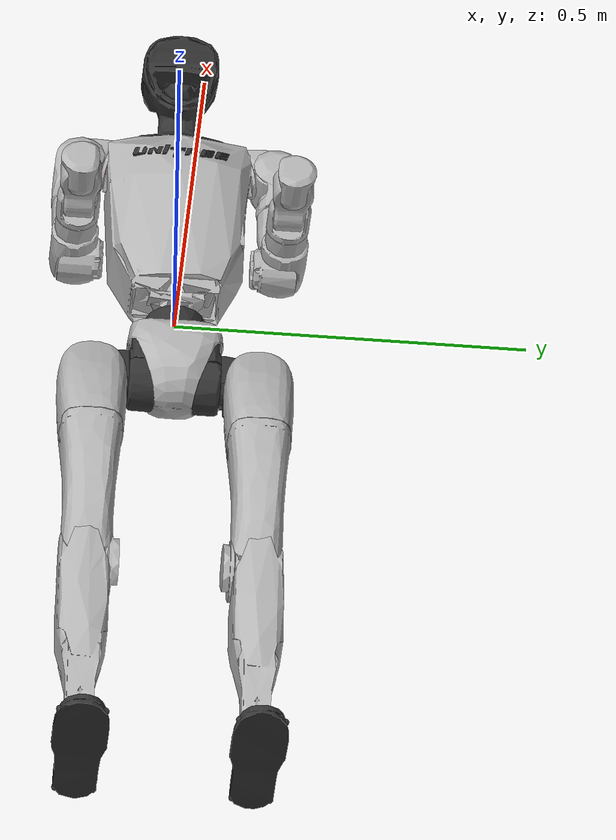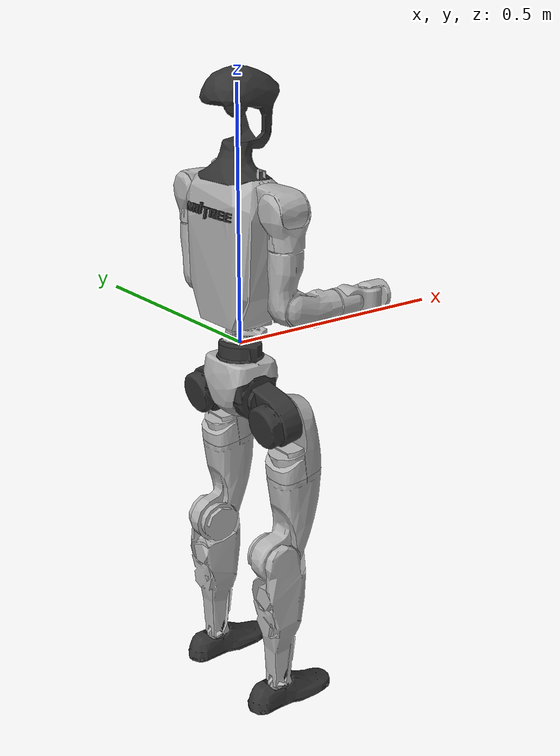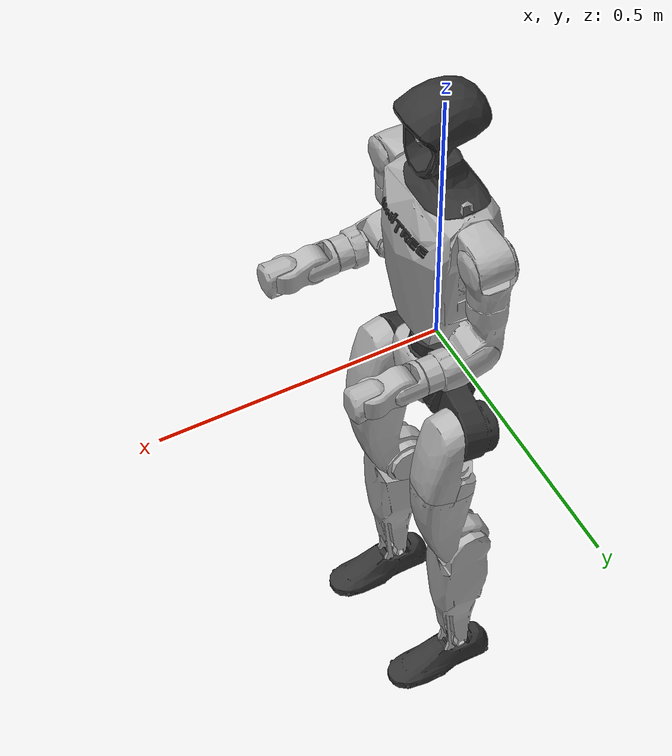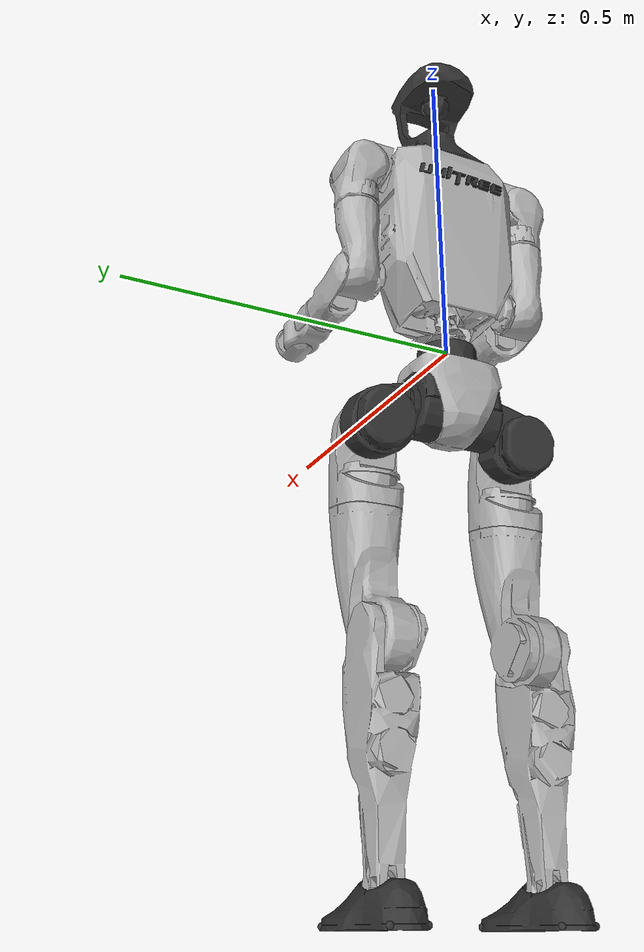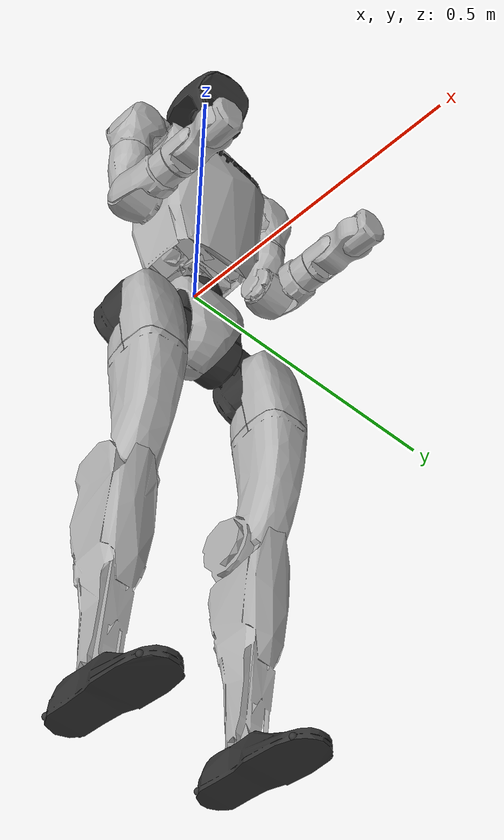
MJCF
<mujoco model="g1_29dof_with_hand_rev_1_0">
  <compiler angle="radian" />

  <default>
    <default class="torso_motor">
      <joint damping="0.05" armature="0.01" frictionloss="0.2" />
    </default>
    <default class="leg_motor">
      <joint damping="0.05" armature="0.01" frictionloss="0.2" />
    </default>
    <default class="ankle_motor">
      <joint damping="0.05" armature="0.01" frictionloss="0.2" />
    </default>
    <default class="arm_motor">
      <joint damping="0.05" armature="0.01" frictionloss="0.2" />
    </default>
    <default class="wrist_motor">
      <joint damping="0.05" armature="0.01" frictionloss="0.1" />
    </default>

  </default>

  <asset>
    <mesh name="pelvis" file="meshes/pelvis.STL" />
    <mesh name="pelvis_contour_link" file="meshes/pelvis_contour_link.STL" />
    <mesh name="left_hip_pitch_link" file="meshes/left_hip_pitch_link.STL" />
    <mesh name="left_hip_roll_link" file="meshes/left_hip_roll_link.STL" />
    <mesh name="left_hip_yaw_link" file="meshes/left_hip_yaw_link.STL" />
    <mesh name="left_knee_link" file="meshes/left_knee_link.STL" />
    <mesh name="left_ankle_pitch_link" file="meshes/left_ankle_pitch_link.STL" />
    <mesh name="left_ankle_roll_link" file="meshes/left_ankle_roll_link.STL" />
    <mesh name="right_hip_pitch_link" file="meshes/right_hip_pitch_link.STL" />
    <mesh name="right_hip_roll_link" file="meshes/right_hip_roll_link.STL" />
    <mesh name="right_hip_yaw_link" file="meshes/right_hip_yaw_link.STL" />
    <mesh name="right_knee_link" file="meshes/right_knee_link.STL" />
    <mesh name="right_ankle_pitch_link" file="meshes/right_ankle_pitch_link.STL" />
    <mesh name="right_ankle_roll_link" file="meshes/right_ankle_roll_link.STL" />
    <mesh name="waist_yaw_link" file="meshes/waist_yaw_link_rev_1_0.STL" />
    <mesh name="waist_roll_link" file="meshes/waist_roll_link_rev_1_0.STL" />
    <mesh name="torso_link" file="meshes/torso_link_rev_1_0.STL" />
    <mesh name="logo_link" file="meshes/logo_link.STL" />
    <mesh name="head_link" file="meshes/head_link.STL" />
    <mesh name="left_shoulder_pitch_link" file="meshes/left_shoulder_pitch_link.STL" />
    <mesh name="left_shoulder_roll_link" file="meshes/left_shoulder_roll_link.STL" />
    <mesh name="left_shoulder_yaw_link" file="meshes/left_shoulder_yaw_link.STL" />
    <mesh name="left_elbow_link" file="meshes/left_elbow_link.STL" />
    <mesh name="left_wrist_roll_link" file="meshes/left_wrist_roll_link.STL" />
    <mesh name="left_wrist_pitch_link" file="meshes/left_wrist_pitch_link.STL" />
    <mesh name="left_wrist_yaw_link" file="meshes/left_wrist_yaw_link.STL" />
    <mesh name="right_shoulder_pitch_link" file="meshes/right_shoulder_pitch_link.STL" />
    <mesh name="right_shoulder_roll_link" file="meshes/right_shoulder_roll_link.STL" />
    <mesh name="right_shoulder_yaw_link" file="meshes/right_shoulder_yaw_link.STL" />
    <mesh name="right_elbow_link" file="meshes/right_elbow_link.STL" />
    <mesh name="right_wrist_roll_link" file="meshes/right_wrist_roll_link.STL" />
    <mesh name="right_wrist_pitch_link" file="meshes/right_wrist_pitch_link.STL" />
    <mesh name="right_wrist_yaw_link" file="meshes/right_wrist_yaw_link.STL" />
  </asset>

  <worldbody>
    <body name="base" pos="0 0 0">
      <freejoint name="base" />
      <body name="pelvis" pos="0 0 0">
        <inertial pos="0 0 -0.07605" quat="1 0 -0.000399148 0" mass="3.813"
          diaginertia="0.010549 0.0093089 0.0079184" />
        <geom type="mesh" contype="0" conaffinity="0" group="1" density="0" rgba="0.2 0.2 0.2 1"
          mesh="pelvis" />
        <geom type="mesh" contype="0" conaffinity="0" group="1" density="0" rgba="0.7 0.7 0.7 1"
          mesh="pelvis_contour_link" />
        <geom type="mesh" rgba="0.7 0.7 0.7 1" mesh="pelvis_contour_link" />
        <site name="imu_in_pelvis" size="0.01" pos="0.04525 0 -0.08339" />
        <body name="left_hip_pitch_link" pos="0 0.064452 -0.1027">
          <inertial pos="0.002741 0.047791 -0.02606" quat="0.954862 0.293964 0.0302556 0.030122"
            mass="1.35" diaginertia="0.00181517 0.00153422 0.00116212" />
          <joint name="left_hip_pitch_joint" pos="0 0 0" axis="0 1 0" range="-2.5307 2.8798"
            actuatorfrcrange="-88 88" class="leg_motor" />
          <geom type="mesh" contype="0" conaffinity="0" group="1" density="0" rgba="0.2 0.2 0.2 1"
            mesh="left_hip_pitch_link" />
          <geom type="mesh" rgba="0.2 0.2 0.2 1" mesh="left_hip_pitch_link" />
          <body name="left_hip_roll_link" pos="0 0.052 -0.030465" quat="0.996179 0 -0.0873386 0">
            <inertial pos="0.029812 -0.001045 -0.087934"
              quat="0.977808 -1.97119e-05 0.205576 -0.0403793" mass="1.52"
              diaginertia="0.00254986 0.00241169 0.00148755" />
            <joint name="left_hip_roll_joint" pos="0 0 0" axis="1 0 0" range="-0.5236 2.9671"
              actuatorfrcrange="-139 139" class="leg_motor" />
            <geom type="mesh" contype="0" conaffinity="0" group="1" density="0" rgba="0.7 0.7 0.7 1"
              mesh="left_hip_roll_link" />
            <geom type="mesh" rgba="0.7 0.7 0.7 1" mesh="left_hip_roll_link" />
            <body name="left_hip_yaw_link" pos="0.025001 0 -0.12412">
              <inertial pos="-0.057709 -0.010981 -0.15078" quat="0.600598 0.15832 0.223482 0.751181"
                mass="1.702" diaginertia="0.00776166 0.00717575 0.00160139" />
              <joint name="left_hip_yaw_joint" pos="0 0 0" axis="0 0 1" range="-2.7576 2.7576"
                actuatorfrcrange="-88 88" class="leg_motor" />
              <geom type="mesh" contype="0" conaffinity="0" group="1" density="0"
                rgba="0.7 0.7 0.7 1"
                mesh="left_hip_yaw_link" />
              <geom type="mesh" rgba="0.7 0.7 0.7 1" mesh="left_hip_yaw_link" />
              <body name="left_knee_link" pos="-0.078273 0.0021489 -0.17734"
                quat="0.996179 0 0.0873386 0">
                <inertial pos="0.005457 0.003964 -0.12074"
                  quat="0.923418 -0.0327699 0.0158246 0.382067" mass="1.932"
                  diaginertia="0.0113804 0.0112778 0.00146458" />
                <joint name="left_knee_joint" pos="0 0 0" axis="0 1 0" range="-0.087267 2.8798"
                  actuatorfrcrange="-139 139" class="leg_motor" />
                <geom type="mesh" contype="0" conaffinity="0" group="1" density="0"
                  rgba="0.7 0.7 0.7 1" mesh="left_knee_link" />
                <geom type="mesh" rgba="0.7 0.7 0.7 1" mesh="left_knee_link" />
                <body name="left_ankle_pitch_link" pos="0 -9.4445e-05 -0.30001">
                  <inertial pos="-0.007269 0 0.011137" quat="0.603053 0.369225 0.369225 0.603053"
                    mass="0.074" diaginertia="1.89e-05 1.40805e-05 6.9195e-06" />
                  <joint name="left_ankle_pitch_joint" pos="0 0 0" axis="0 1 0"
                    range="-0.87267 0.5236" actuatorfrcrange="-50 50" class="ankle_motor" />
                  <geom type="mesh" contype="0" conaffinity="0" group="1" density="0"
                    rgba="0.7 0.7 0.7 1" mesh="left_ankle_pitch_link" />
                  <geom type="mesh" rgba="0.7 0.7 0.7 1" mesh="left_ankle_pitch_link" />
                  <body name="left_ankle_roll_link" pos="0 0 -0.017558">
                    <inertial pos="0.026505 0 -0.016425"
                      quat="-0.000481092 0.728482 -0.000618967 0.685065" mass="0.608"
                      diaginertia="0.00167218 0.0016161 0.000217621" />
                    <joint name="left_ankle_roll_joint" pos="0 0 0" axis="1 0 0"
                      range="-0.2618 0.2618" actuatorfrcrange="-50 50" class="ankle_motor" />
                    <geom type="mesh" contype="0" conaffinity="0" group="1" density="0"
                      rgba="0.2 0.2 0.2 1" mesh="left_ankle_roll_link" />
                    <geom size="0.005" pos="-0.05 0.025 -0.03" rgba="0.2 0.2 0.2 1" />
                    <geom size="0.005" pos="-0.05 -0.025 -0.03" rgba="0.2 0.2 0.2 1" />
                    <geom size="0.005" pos="0.12 0.03 -0.03" rgba="0.2 0.2 0.2 1" />
                    <geom size="0.005" pos="0.12 -0.03 -0.03" rgba="0.2 0.2 0.2 1" />
                  </body>
                </body>
              </body>
            </body>
          </body>
        </body>
        <body name="right_hip_pitch_link" pos="0 -0.064452 -0.1027">
          <inertial pos="0.002741 -0.047791 -0.02606" quat="0.954862 -0.293964 0.0302556 -0.030122"
            mass="1.35" diaginertia="0.00181517 0.00153422 0.00116212" />
          <joint name="right_hip_pitch_joint" pos="0 0 0" axis="0 1 0" range="-2.5307 2.8798"
            actuatorfrcrange="-88 88" class="leg_motor" />
          <geom type="mesh" contype="0" conaffinity="0" group="1" density="0" rgba="0.2 0.2 0.2 1"
            mesh="right_hip_pitch_link" />
          <geom type="mesh" rgba="0.2 0.2 0.2 1" mesh="right_hip_pitch_link" />
          <body name="right_hip_roll_link" pos="0 -0.052 -0.030465" quat="0.996179 0 -0.0873386 0">
            <inertial pos="0.029812 0.001045 -0.087934"
              quat="0.977808 1.97119e-05 0.205576 0.0403793"
              mass="1.52" diaginertia="0.00254986 0.00241169 0.00148755" />
            <joint name="right_hip_roll_joint" pos="0 0 0" axis="1 0 0" range="-2.9671 0.5236"
              actuatorfrcrange="-139 139" class="leg_motor" />
            <geom type="mesh" contype="0" conaffinity="0" group="1" density="0" rgba="0.7 0.7 0.7 1"
              mesh="right_hip_roll_link" />
            <geom type="mesh" rgba="0.7 0.7 0.7 1" mesh="right_hip_roll_link" />
            <body name="right_hip_yaw_link" pos="0.025001 0 -0.12412">
              <inertial pos="-0.057709 0.010981 -0.15078" quat="0.751181 0.223482 0.15832 0.600598"
                mass="1.702" diaginertia="0.00776166 0.00717575 0.00160139" />
              <joint name="right_hip_yaw_joint" pos="0 0 0" axis="0 0 1" range="-2.7576 2.7576"
                actuatorfrcrange="-88 88" class="leg_motor" />
              <geom type="mesh" contype="0" conaffinity="0" group="1" density="0"
                rgba="0.7 0.7 0.7 1"
                mesh="right_hip_yaw_link" />
              <geom type="mesh" rgba="0.7 0.7 0.7 1" mesh="right_hip_yaw_link" />
              <body name="right_knee_link" pos="-0.078273 -0.0021489 -0.17734"
                quat="0.996179 0 0.0873386 0">
                <inertial pos="0.005457 -0.003964 -0.12074"
                  quat="0.923439 0.0345276 0.0116333 -0.382012" mass="1.932"
                  diaginertia="0.011374 0.0112843 0.00146452" />
                <joint name="right_knee_joint" pos="0 0 0" axis="0 1 0" range="-0.087267 2.8798"
                  actuatorfrcrange="-139 139" class="leg_motor" />
                <geom type="mesh" contype="0" conaffinity="0" group="1" density="0"
                  rgba="0.7 0.7 0.7 1" mesh="right_knee_link" />
                <geom type="mesh" rgba="0.7 0.7 0.7 1" mesh="right_knee_link" />
                <body name="right_ankle_pitch_link" pos="0 9.4445e-05 -0.30001">
                  <inertial pos="-0.007269 0 0.011137" quat="0.603053 0.369225 0.369225 0.603053"
                    mass="0.074" diaginertia="1.89e-05 1.40805e-05 6.9195e-06" />
                  <joint name="right_ankle_pitch_joint" pos="0 0 0" axis="0 1 0"
                    range="-0.87267 0.5236" actuatorfrcrange="-50 50" class="ankle_motor" />
                  <geom type="mesh" contype="0" conaffinity="0" group="1" density="0"
                    rgba="0.7 0.7 0.7 1" mesh="right_ankle_pitch_link" />
                  <geom type="mesh" rgba="0.7 0.7 0.7 1" mesh="right_ankle_pitch_link" />
                  <body name="right_ankle_roll_link" pos="0 0 -0.017558">
                    <inertial pos="0.026505 0 -0.016425"
                      quat="0.000481092 0.728482 0.000618967 0.685065" mass="0.608"
                      diaginertia="0.00167218 0.0016161 0.000217621" />
                    <joint name="right_ankle_roll_joint" pos="0 0 0" axis="1 0 0"
                      range="-0.2618 0.2618" actuatorfrcrange="-50 50" class="ankle_motor" />
                    <geom type="mesh" contype="0" conaffinity="0" group="1" density="0"
                      rgba="0.2 0.2 0.2 1" mesh="right_ankle_roll_link" />
                    <geom size="0.005" pos="-0.05 0.025 -0.03" rgba="0.2 0.2 0.2 1" />
                    <geom size="0.005" pos="-0.05 -0.025 -0.03" rgba="0.2 0.2 0.2 1" />
                    <geom size="0.005" pos="0.12 0.03 -0.03" rgba="0.2 0.2 0.2 1" />
                    <geom size="0.005" pos="0.12 -0.03 -0.03" rgba="0.2 0.2 0.2 1" />
                  </body>
                </body>
              </body>
            </body>
          </body>
        </body>
        <body name="waist_yaw_link">
          <inertial pos="0.003494 0.000233 0.018034" quat="0.289697 0.591001 -0.337795 0.672821"
            mass="0.214" diaginertia="0.000163531 0.000107714 0.000102205" />
          <joint name="waist_yaw_joint" pos="0 0 0" axis="0 0 1" range="-2.618 2.618"
            actuatorfrcrange="-88 88" class="torso_motor" />
          <geom type="mesh" contype="0" conaffinity="0" group="1" density="0" rgba="0.7 0.7 0.7 1"
            mesh="waist_yaw_link" />
          <body name="waist_roll_link" pos="-0.0039635 0 0.044">
            <inertial pos="0 2.3e-05 0" quat="0.5 0.5 -0.5 0.5" mass="0.086"
              diaginertia="8.245e-06 7.079e-06 6.339e-06" />
            <joint name="waist_roll_joint" pos="0 0 0" axis="1 0 0" range="-0.52 0.52"
              actuatorfrcrange="-50 50" class="torso_motor" />
            <geom type="mesh" contype="0" conaffinity="0" group="1" density="0" rgba="0.7 0.7 0.7 1"
              mesh="waist_roll_link" />
            <body name="torso_link">
              <inertial pos="0.00203158 0.000339683 0.184568"
                quat="0.999803 -6.03319e-05 0.0198256 0.00131986" mass="7.818"
                diaginertia="0.121847 0.109825 0.0273735" />
              <joint name="waist_pitch_joint" pos="0 0 0" axis="0 1 0" range="-0.52 0.52"
                actuatorfrcrange="-50 50" class="torso_motor" />
              <geom type="mesh" contype="0" conaffinity="0" group="1" density="0"
                rgba="0.7 0.7 0.7 1"
                mesh="torso_link" />
              <geom type="mesh" rgba="0.7 0.7 0.7 1" mesh="torso_link" />
              <geom pos="0.0039635 0 -0.044" quat="1 0 0 0" type="mesh" contype="0" conaffinity="0"
                group="1" density="0" rgba="0.2 0.2 0.2 1" mesh="logo_link" />
              <geom pos="0.0039635 0 -0.044" quat="1 0 0 0" type="mesh" rgba="0.2 0.2 0.2 1"
                mesh="logo_link" />
              <geom pos="0.0039635 0 -0.044" type="mesh" contype="0" conaffinity="0" group="1"
                density="0" rgba="0.2 0.2 0.2 1" mesh="head_link" />
              <geom pos="0.0039635 0 -0.044" type="mesh" rgba="0.2 0.2 0.2 1" mesh="head_link" />
              <site name="imu_in_torso" size="0.01" pos="-0.03959 -0.00224 0.14792" />
              <body name="left_shoulder_pitch_link" pos="0.0039563 0.10022 0.24778"
                quat="0.990264 0.139201 1.38722e-05 -9.86868e-05">
                <site name="left_center" pos="0 0 0" size="0.01" rgba="1 0.3 0.3 1" group="2" />
                <inertial pos="0 0.035892 -0.011628" quat="0.654152 0.0130458 -0.326267 0.68225"
                  mass="0.718" diaginertia="0.000465864 0.000432842 0.000406394" />
                <joint name="left_shoulder_pitch_joint" pos="0 0 0" axis="0 1 0"
                  range="-3.0892 2.6704" actuatorfrcrange="-25 25" class="arm_motor" />
                <geom type="mesh" contype="0" conaffinity="0" group="1" density="0"
                  rgba="0.7 0.7 0.7 1" mesh="left_shoulder_pitch_link" />
                <geom size="0.03 0.025" pos="0 0.04 -0.01" quat="0.707107 0 0.707107 0"
                  type="cylinder" rgba="0.7 0.7 0.7 1" />
                <body name="left_shoulder_roll_link" pos="0 0.038 -0.013831"
                  quat="0.990268 -0.139172 0 0">
                  <inertial pos="-0.000227 0.00727 -0.063243"
                    quat="0.701256 -0.0196223 -0.00710317 0.712604" mass="0.643"
                    diaginertia="0.000691311 0.000618011 0.000388977" />
                  <joint name="left_shoulder_roll_joint" pos="0 0 0" axis="1 0 0"
                    range="-1.5882 2.2515" actuatorfrcrange="-25 25" class="arm_motor" />
                  <geom type="mesh" contype="0" conaffinity="0" group="1" density="0"
                    rgba="0.7 0.7 0.7 1" mesh="left_shoulder_roll_link" />
                  <geom size="0.03 0.015" pos="-0.004 0.006 -0.053" type="cylinder"
                    rgba="0.7 0.7 0.7 1" />
                  <body name="left_shoulder_yaw_link" pos="0 0.00624 -0.1032">
                    <inertial pos="0.010773 -0.002949 -0.072009"
                      quat="0.716879 -0.0964829 -0.0679942 0.687134" mass="0.734"
                      diaginertia="0.00106187 0.00103217 0.000400661" />
                    <joint name="left_shoulder_yaw_joint" pos="0 0 0" axis="0 0 1"
                      range="-2.618 2.618" actuatorfrcrange="-25 25" class="arm_motor" />
                    <geom type="mesh" contype="0" conaffinity="0" group="1" density="0"
                      rgba="0.7 0.7 0.7 1" mesh="left_shoulder_yaw_link" />
                    <geom type="mesh" rgba="0.7 0.7 0.7 1" mesh="left_shoulder_yaw_link" />
                    <body name="left_elbow_link" pos="0.015783 0 -0.080518">
                      <inertial pos="0.064956 0.004454 -0.010062"
                        quat="0.541765 0.636132 0.388821 0.388129" mass="0.6"
                        diaginertia="0.000443035 0.000421612 0.000259353" />
                      <joint name="left_elbow_joint" pos="0 0 0" axis="0 1 0" range="-1.0472 2.0944"
                        actuatorfrcrange="-25 25" class="arm_motor" />
                      <geom type="mesh" contype="0" conaffinity="0" group="1" density="0"
                        rgba="0.7 0.7 0.7 1" mesh="left_elbow_link" />
                      <geom type="mesh" rgba="0.7 0.7 0.7 1" mesh="left_elbow_link" />
                      <body name="left_wrist_roll_link" pos="0.1 0.00188791 -0.01">
                        <inertial pos="0.0171394 0.000537591 4.8864e-07"
                          quat="0.575338 0.411667 -0.574906 0.411094" mass="0.085445"
                          diaginertia="5.48211e-05 4.96646e-05 3.57798e-05" />
                        <joint name="left_wrist_roll_joint" pos="0 0 0" axis="1 0 0"
                          range="-1.97222 1.97222" actuatorfrcrange="-30 30" class="wrist_motor" />
                        <geom type="mesh" contype="0" conaffinity="0" group="1" density="0"
                          rgba="0.7 0.7 0.7 1" mesh="left_wrist_roll_link" />
                        <geom type="mesh" rgba="0.7 0.7 0.7 1" mesh="left_wrist_roll_link" />
                        <body name="left_wrist_pitch_link" pos="0.038 0 0">
                          <inertial pos="0.0229999 -0.00111685 -0.00111658"
                            quat="0.249998 0.661363 0.293036 0.643608" mass="0.48405"
                            diaginertia="0.000430353 0.000429873 0.000164648" />
                          <joint name="left_wrist_pitch_joint" pos="0 0 0" axis="0 1 0"
                            range="-1.61443 1.61443" actuatorfrcrange="-10 10" class="wrist_motor" />
                          <geom type="mesh" contype="0" conaffinity="0" group="1" density="0"
                            rgba="0.7 0.7 0.7 1" mesh="left_wrist_pitch_link" />
                          <geom type="mesh" rgba="0.7 0.7 0.7 1" mesh="left_wrist_pitch_link" />
                          <body name="left_wrist_yaw_link" pos="0.046 0 0">
                            <inertial pos="0.0885506 0.00212216 -0.000374562"
                              quat="0.487149 0.493844 0.513241 0.505358" mass="0.457415"
                              diaginertia="0.00105989 0.000895419 0.000323842" />
                            <joint name="left_wrist_yaw_joint" pos="0 0 0" axis="0 0 1"
                              range="-1.61443 1.61443" actuatorfrcrange="-10 10" class="wrist_motor" />
                            <geom type="mesh" contype="0" conaffinity="0" group="1" density="0"
                              rgba="0.7 0.7 0.7 1" mesh="left_wrist_yaw_link" />
                            <geom type="mesh" rgba="0.7 0.7 0.7 1" mesh="left_wrist_yaw_link" />
                            <body name="left_eef" pos="0.04 0 0" quat="0.5 -0.5 -0.5 0.5">
                            </body>
                          </body>
                        </body>
                      </body>
                    </body>
                  </body>
                </body>
              </body>
              <body name="right_shoulder_pitch_link" pos="0.0039563 -0.10021 0.24778"
                quat="0.990264 -0.139201 1.38722e-05 9.86868e-05">
                <site name="right_center" pos="0 0 0" size="0.01" rgba="1 0.3 0.3 1" group="2" />
                <inertial pos="0 -0.035892 -0.011628" quat="0.68225 -0.326267 0.0130458 0.654152"
                  mass="0.718" diaginertia="0.000465864 0.000432842 0.000406394" />
                <joint name="right_shoulder_pitch_joint" pos="0 0 0" axis="0 1 0"
                  range="-3.0892 2.6704" actuatorfrcrange="-25 25" class="arm_motor" />
                <geom type="mesh" contype="0" conaffinity="0" group="1" density="0"
                  rgba="0.7 0.7 0.7 1" mesh="right_shoulder_pitch_link" />
                <geom size="0.03 0.025" pos="0 -0.04 -0.01" quat="0.707107 0 0.707107 0"
                  type="cylinder" rgba="0.7 0.7 0.7 1" />
                <body name="right_shoulder_roll_link" pos="0 -0.038 -0.013831"
                  quat="0.990268 0.139172 0 0">
                  <inertial pos="-0.000227 -0.00727 -0.063243"
                    quat="0.712604 -0.00710317 -0.0196223 0.701256" mass="0.643"
                    diaginertia="0.000691311 0.000618011 0.000388977" />
                  <joint name="right_shoulder_roll_joint" pos="0 0 0" axis="1 0 0"
                    range="-2.2515 1.5882" actuatorfrcrange="-25 25" class="arm_motor" />
                  <geom type="mesh" contype="0" conaffinity="0" group="1" density="0"
                    rgba="0.7 0.7 0.7 1" mesh="right_shoulder_roll_link" />
                  <geom size="0.03 0.015" pos="-0.004 -0.006 -0.053" type="cylinder"
                    rgba="0.7 0.7 0.7 1" />
                  <body name="right_shoulder_yaw_link" pos="0 -0.00624 -0.1032">
                    <inertial pos="0.010773 0.002949 -0.072009"
                      quat="0.687134 -0.0679942 -0.0964829 0.716879" mass="0.734"
                      diaginertia="0.00106187 0.00103217 0.000400661" />
                    <joint name="right_shoulder_yaw_joint" pos="0 0 0" axis="0 0 1"
                      range="-2.618 2.618" actuatorfrcrange="-25 25" class="arm_motor" />
                    <geom type="mesh" contype="0" conaffinity="0" group="1" density="0"
                      rgba="0.7 0.7 0.7 1" mesh="right_shoulder_yaw_link" />
                    <geom type="mesh" rgba="0.7 0.7 0.7 1" mesh="right_shoulder_yaw_link" />
                    <body name="right_elbow_link" pos="0.015783 0 -0.080518">
                      <inertial pos="0.064956 -0.004454 -0.010062"
                        quat="0.388129 0.388821 0.636132 0.541765" mass="0.6"
                        diaginertia="0.000443035 0.000421612 0.000259353" />
                      <joint name="right_elbow_joint" pos="0 0 0" axis="0 1 0"
                        range="-1.0472 2.0944"
                        actuatorfrcrange="-25 25" class="arm_motor" />
                      <geom type="mesh" contype="0" conaffinity="0" group="1" density="0"
                        rgba="0.7 0.7 0.7 1" mesh="right_elbow_link" />
                      <geom type="mesh" rgba="0.7 0.7 0.7 1" mesh="right_elbow_link" />
                      <body name="right_wrist_roll_link" pos="0.1 -0.00188791 -0.01">
                        <inertial pos="0.0171394 -0.000537591 4.8864e-07"
                          quat="0.411667 0.575338 -0.411094 0.574906" mass="0.085445"
                          diaginertia="5.48211e-05 4.96646e-05 3.57798e-05" />
                        <joint name="right_wrist_roll_joint" pos="0 0 0" axis="1 0 0"
                          range="-1.97222 1.97222" actuatorfrcrange="-30 30" class="wrist_motor" />
                        <geom type="mesh" contype="0" conaffinity="0" group="1" density="0"
                          rgba="0.7 0.7 0.7 1" mesh="right_wrist_roll_link" />
                        <geom type="mesh" rgba="0.7 0.7 0.7 1" mesh="right_wrist_roll_link" />
                        <body name="right_wrist_pitch_link" pos="0.038 0 0">
                          <inertial pos="0.0229999 0.00111685 -0.00111658"
                            quat="0.643608 0.293036 0.661363 0.249998" mass="0.48405"
                            diaginertia="0.000430353 0.000429873 0.000164648" />
                          <joint name="right_wrist_pitch_joint" pos="0 0 0" axis="0 1 0"
                            range="-1.61443 1.61443" actuatorfrcrange="-10 10" class="wrist_motor" />
                          <geom type="mesh" contype="0" conaffinity="0" group="1" density="0"
                            rgba="0.7 0.7 0.7 1" mesh="right_wrist_pitch_link" />
                          <geom type="mesh" rgba="0.7 0.7 0.7 1" mesh="right_wrist_pitch_link" />
                          <body name="right_wrist_yaw_link" pos="0.046 0 0">
                            <inertial pos="0.0885506 -0.00212216 -0.000374562"
                              quat="0.505358 0.513241 0.493844 0.487149" mass="0.457415"
                              diaginertia="0.00105989 0.000895419 0.000323842" />
                            <joint name="right_wrist_yaw_joint" pos="0 0 0" axis="0 0 1"
                              range="-1.61443 1.61443" actuatorfrcrange="-10 10" class="wrist_motor" />
                            <geom type="mesh" contype="0" conaffinity="0" group="1" density="0"
                              rgba="0.7 0.7 0.7 1" mesh="right_wrist_yaw_link" />
                            <geom type="mesh" rgba="0.7 0.7 0.7 1" mesh="right_wrist_yaw_link" />
                            <body name="right_eef" pos="0.04 0 0" quat="0.5 0.5 -0.5 -0.5">

                            </body>
                          </body>
                        </body>
                      </body>
                    </body>
                  </body>
                </body>
              </body>
            </body>
          </body>
        </body>
      </body>
    </body>
  </worldbody>

  <actuator>
    <motor name="left_hip_pitch_joint" joint="left_hip_pitch_joint" ctrlrange="-88 88" />
    <motor name="left_hip_roll_joint" joint="left_hip_roll_joint" ctrlrange="-139 139" />
    <motor name="left_hip_yaw_joint" joint="left_hip_yaw_joint" ctrlrange="-88 88" />
    <motor name="left_knee_joint" joint="left_knee_joint" ctrlrange="-139 139" />
    <motor name="left_ankle_pitch_joint" joint="left_ankle_pitch_joint" ctrlrange="-50 50" />
    <motor name="left_ankle_roll_joint" joint="left_ankle_roll_joint" ctrlrange="-50 50" />
    <motor name="right_hip_pitch_joint" joint="right_hip_pitch_joint" ctrlrange="-88 88" />
    <motor name="right_hip_roll_joint" joint="right_hip_roll_joint" ctrlrange="-139 139" />
    <motor name="right_hip_yaw_joint" joint="right_hip_yaw_joint" ctrlrange="-88 88" />
    <motor name="right_knee_joint" joint="right_knee_joint" ctrlrange="-139 139" />
    <motor name="right_ankle_pitch_joint" joint="right_ankle_pitch_joint" ctrlrange="-50 50" />
    <motor name="right_ankle_roll_joint" joint="right_ankle_roll_joint" ctrlrange="-50 50" />
    <motor name="waist_yaw_joint" joint="waist_yaw_joint" ctrlrange="-88 88" />
    <motor name="waist_roll_joint" joint="waist_roll_joint" ctrlrange="-50 50" />
    <motor name="waist_pitch_joint" joint="waist_pitch_joint" ctrlrange="-50 50" />
    <motor name="left_shoulder_pitch_joint" joint="left_shoulder_pitch_joint" ctrlrange="-25 25" />
    <motor name="left_shoulder_roll_joint" joint="left_shoulder_roll_joint" ctrlrange="-25 25" />
    <motor name="left_shoulder_yaw_joint" joint="left_shoulder_yaw_joint" ctrlrange="-25 25" />
    <motor name="left_elbow_joint" joint="left_elbow_joint" ctrlrange="-25 25" />
    <motor name="left_wrist_roll_joint" joint="left_wrist_roll_joint" ctrlrange="-30 30" />
    <motor name="left_wrist_pitch_joint" joint="left_wrist_pitch_joint" ctrlrange="-10 10" />
    <motor name="left_wrist_yaw_joint" joint="left_wrist_yaw_joint" ctrlrange="-10 10" />
    <motor name="right_shoulder_pitch_joint" joint="right_shoulder_pitch_joint" ctrlrange="-25 25" />
    <motor name="right_shoulder_roll_joint" joint="right_shoulder_roll_joint" ctrlrange="-25 25" />
    <motor name="right_shoulder_yaw_joint" joint="right_shoulder_yaw_joint" ctrlrange="-25 25" />
    <motor name="right_elbow_joint" joint="right_elbow_joint" ctrlrange="-25 25" />
    <motor name="right_wrist_roll_joint" joint="right_wrist_roll_joint" ctrlrange="-30 30" />
    <motor name="right_wrist_pitch_joint" joint="right_wrist_pitch_joint" ctrlrange="-10 10" />
    <motor name="right_wrist_yaw_joint" joint="right_wrist_yaw_joint" ctrlrange="-10 10" />
  </actuator>

  <sensor>
    <gyro name="imu-torso-angular-velocity" site="imu_in_torso" noise="5e-4" cutoff="34.9" />
    <accelerometer name="imu-torso-linear-acceleration" site="imu_in_torso" noise="1e-2"
      cutoff="157" />
    <gyro name="imu-pelvis-angular-velocity" site="imu_in_pelvis" noise="5e-4" cutoff="34.9" />
    <accelerometer name="imu-pelvis-linear-acceleration" site="imu_in_pelvis" noise="1e-2"
      cutoff="157" />
  </sensor>

</mujoco>
